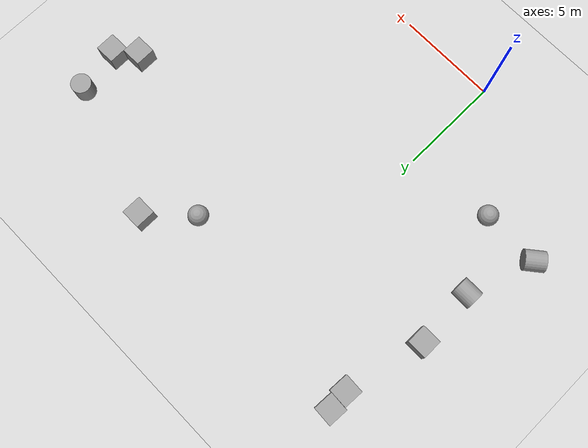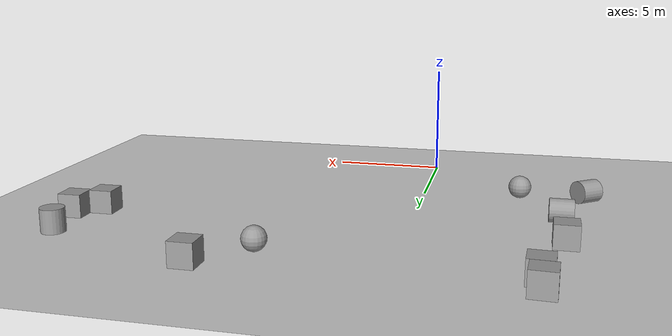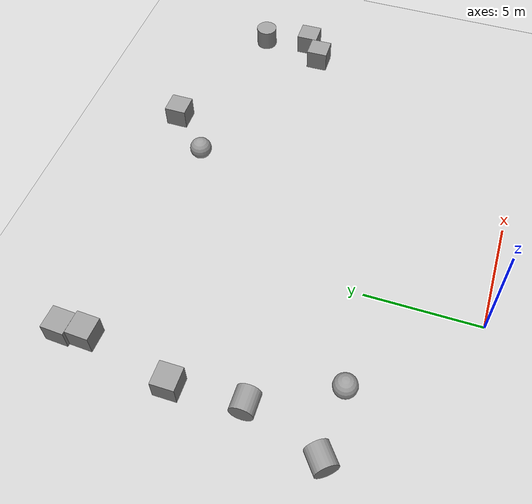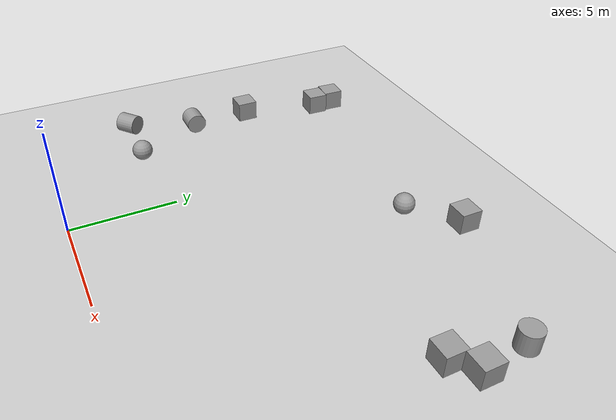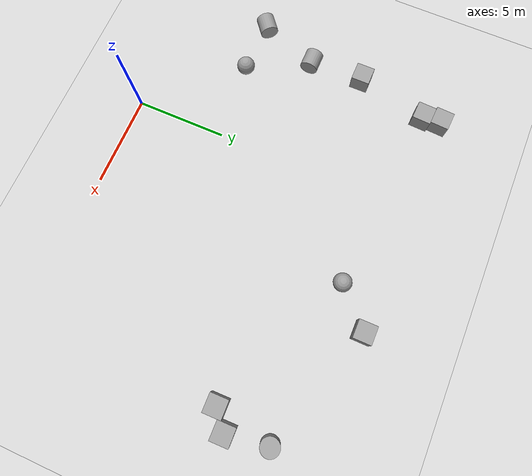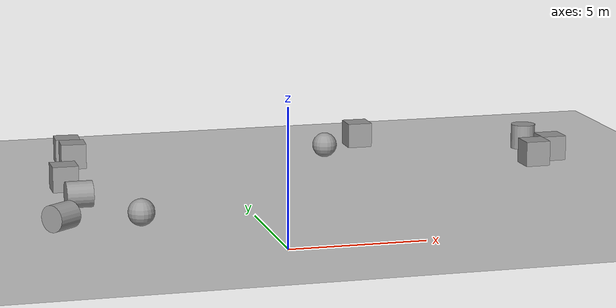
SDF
<sdf version="1.7">
 <world name="default">
  <model name="ground_plane">
   <static>1</static>
   <link name="link">
    <collision name="collision">
     <geometry><plane><normal>0 0 1</normal><size>100 100</size></plane></geometry>
     <surface>
      <contact><collide_bitmask>65535</collide_bitmask></contact>
      <friction><ode><mu>100</mu><mu2>50</mu2></ode></friction>
     </surface>
    </collision>
    <visual name="visual">
     <cast_shadows>0</cast_shadows>
     <geometry><plane><normal>0 0 1</normal><size>100 100</size></plane></geometry>
     <material>
      <script><uri>file://media/materials/scripts/gazebo.material</uri><name>Gazebo/Grey</name></script>
     </material>
    </visual>
   </link>
  </model>
  <model name="unit_sphere">
   <pose>-4.28858 4.61514 0.5 0 -0 0</pose>
   <link name="link">
    <inertial>
     <mass>1</mass>
     <inertia><ixx>0.1</ixx><ixy>0</ixy><ixz>0</ixz><iyy>0.1</iyy><iyz>0</iyz><izz>0.1</izz></inertia>
    </inertial>
    <collision name="collision"><geometry><sphere><radius>0.5</radius></sphere></geometry></collision>
    <visual name="visual">
     <geometry><sphere><radius>0.5</radius></sphere></geometry>
     <material>
      <script><name>Gazebo/Grey</name><uri>file://media/materials/scripts/gazebo.material</uri></script>
     </material>
    </visual>
   </link>
  </model>
  <model name="unit_box">
   <pose>-6.14104 10.9791 0.499995 -1e-05 -0 0</pose>
   <link name="link">
    <inertial>
     <mass>1</mass>
     <inertia>
      <ixx>0.166667</ixx>
      <ixy>0</ixy>
      <ixz>0</ixz>
      <iyy>0.166667</iyy>
      <iyz>0</iyz>
      <izz>0.166667</izz>
     </inertia>
    </inertial>
    <collision name="collision"><geometry><box><size>1 1 1</size></box></geometry></collision>
    <visual name="visual">
     <geometry><box><size>1 1 1</size></box></geometry>
     <material>
      <script><name>Gazebo/Grey</name><uri>file://media/materials/scripts/gazebo.material</uri></script>
     </material>
    </visual>
   </link>
  </model>
  <model name="unit_cylinder">
   <pose>-6.03176 7.959 0.5 -1.5708 -1.57079 1.57079</pose>
   <link name="link">
    <inertial>
     <mass>1</mass>
     <inertia><ixx>0.145833</ixx><ixy>0</ixy><ixz>0</ixz><iyy>0.145833</iyy><iyz>0</iyz><izz>0.125</izz></inertia>
    </inertial>
    <collision name="collision">
     <geometry><cylinder><radius>0.5</radius><length>1</length></cylinder></geometry>
    </collision>
    <visual name="visual">
     <geometry><cylinder><radius>0.5</radius><length>1</length></cylinder></geometry>
     <material>
      <script><name>Gazebo/Grey</name><uri>file://media/materials/scripts/gazebo.material</uri></script>
     </material>
    </visual>
   </link>
  </model>
  <model name="unit_cylinder_0">
   <pose>-7.17754 4.70519 0.5 1.57099 1.57 2.24943</pose>
   <link name="link">
    <inertial>
     <mass>1</mass>
     <inertia><ixx>0.145833</ixx><ixy>0</ixy><ixz>0</ixz><iyy>0.145833</iyy><iyz>0</iyz><izz>0.125</izz></inertia>
    </inertial>
    <collision name="collision">
     <geometry><cylinder><radius>0.5</radius><length>1</length></cylinder></geometry>
    </collision>
    <visual name="visual">
     <geometry><cylinder><radius>0.5</radius><length>1</length></cylinder></geometry>
     <material>
      <script><name>Gazebo/Grey</name><uri>file://media/materials/scripts/gazebo.material</uri></script>
     </material>
    </visual>
   </link>
  </model>
  <model name="unit_box_0">
   <pose>-5.2043 14.9165 0.499995 -0 -1e-05 -0.0479</pose>
   <link name="link">
    <inertial>
     <mass>1</mass>
     <inertia>
      <ixx>0.166667</ixx>
      <ixy>0</ixy>
      <ixz>0</ixz>
      <iyy>0.166667</iyy>
      <iyz>0</iyz>
      <izz>0.166667</izz>
     </inertia>
    </inertial>
    <collision name="collision"><geometry><box><size>1 1 1</size></box></geometry></collision>
    <visual name="visual">
     <geometry><box><size>1 1 1</size></box></geometry>
     <material>
      <script><name>Gazebo/Grey</name><uri>file://media/materials/scripts/gazebo.material</uri></script>
     </material>
    </visual>
   </link>
  </model>
  <model name="unit_box_3">
   <pose>-5.27889 15.9235 0.499995 -1e-05 -0 -0.052551</pose>
   <link name="link">
    <inertial>
     <mass>1</mass>
     <inertia>
      <ixx>0.166667</ixx>
      <ixy>0</ixy>
      <ixz>0</ixz>
      <iyy>0.166667</iyy>
      <iyz>0</iyz>
      <izz>0.166667</izz>
     </inertia>
    </inertial>
    <collision name="collision"><geometry><box><size>1 1 1</size></box></geometry></collision>
    <visual name="visual">
     <geometry><box><size>1 1 1</size></box></geometry>
     <material>
      <script><name>Gazebo/Grey</name><uri>file://media/materials/scripts/gazebo.material</uri></script>
     </material>
    </visual>
   </link>
  </model>
  <model name="unit_sphere_0">
   <pose>5.12333 14.1592 0.5 0 -0 0</pose>
   <link name="link">
    <inertial>
     <mass>1</mass>
     <inertia><ixx>0.1</ixx><ixy>0</ixy><ixz>0</ixz><iyy>0.1</iyy><iyz>0</iyz><izz>0.1</izz></inertia>
    </inertial>
    <collision name="collision"><geometry><sphere><radius>0.5</radius></sphere></geometry></collision>
    <visual name="visual">
     <geometry><sphere><radius>0.5</radius></sphere></geometry>
     <material>
      <script><name>Gazebo/Grey</name><uri>file://media/materials/scripts/gazebo.material</uri></script>
     </material>
    </visual>
   </link>
  </model>
  <model name="unit_box_4">
   <pose>7.03855 16.031 0.5 0 -0 5e-06</pose>
   <link name="link">
    <inertial>
     <mass>1</mass>
     <inertia>
      <ixx>0.166667</ixx>
      <ixy>0</ixy>
      <ixz>0</ixz>
      <iyy>0.166667</iyy>
      <iyz>0</iyz>
      <izz>0.166667</izz>
     </inertia>
    </inertial>
    <collision name="collision"><geometry><box><size>1 1 1</size></box></geometry></collision>
    <visual name="visual">
     <geometry><box><size>1 1 1</size></box></geometry>
     <material>
      <script><name>Gazebo/Grey</name><uri>file://media/materials/scripts/gazebo.material</uri></script>
     </material>
    </visual>
   </link>
  </model>
  <model name="unit_box_5">
   <pose>13.9836 11.5403 0.499995 -1e-05 -0 0.015962</pose>
   <link name="link">
    <inertial>
     <mass>1</mass>
     <inertia>
      <ixx>0.166667</ixx>
      <ixy>0</ixy>
      <ixz>0</ixz>
      <iyy>0.166667</iyy>
      <iyz>0</iyz>
      <izz>0.166667</izz>
     </inertia>
    </inertial>
    <collision name="collision"><geometry><box><size>1 1 1</size></box></geometry></collision>
    <visual name="visual">
     <geometry><box><size>1 1 1</size></box></geometry>
     <material>
      <script><name>Gazebo/Grey</name><uri>file://media/materials/scripts/gazebo.material</uri></script>
     </material>
    </visual>
   </link>
  </model>
  <model name="unit_box_6">
   <pose>12.9964 10.7214 0.499995 -1e-05 -0 0.015976</pose>
   <link name="link">
    <inertial>
     <mass>1</mass>
     <inertia>
      <ixx>0.166667</ixx>
      <ixy>0</ixy>
      <ixz>0</ixz>
      <iyy>0.166667</iyy>
      <iyz>0</iyz>
      <izz>0.166667</izz>
     </inertia>
    </inertial>
    <collision name="collision"><geometry><box><size>1 1 1</size></box></geometry></collision>
    <visual name="visual">
     <geometry><box><size>1 1 1</size></box></geometry>
     <material>
      <script><name>Gazebo/Grey</name><uri>file://media/materials/scripts/gazebo.material</uri></script>
     </material>
    </visual>
   </link>
  </model>
  <model name="unit_cylinder_1">
   <pose>13.6487 13.7961 0.499993 -2e-06 -1e-06 0</pose>
   <link name="link">
    <inertial>
     <mass>1</mass>
     <inertia><ixx>0.145833</ixx><ixy>0</ixy><ixz>0</ixz><iyy>0.145833</iyy><iyz>0</iyz><izz>0.125</izz></inertia>
    </inertial>
    <collision name="collision">
     <geometry><cylinder><radius>0.5</radius><length>1</length></cylinder></geometry>
    </collision>
    <visual name="visual">
     <geometry><cylinder><radius>0.5</radius><length>1</length></cylinder></geometry>
     <material>
      <script><name>Gazebo/Grey</name><uri>file://media/materials/scripts/gazebo.material</uri></script>
     </material>
    </visual>
   </link>
  </model>
  <model name="camera">
   <link name="camera">
    <inertial>
     <mass>1e-05</mass>
     <inertia><ixx>1e-06</ixx><ixy>0</ixy><ixz>0</ixz><iyy>1e-06</iyy><iyz>0</iyz><izz>1e-06</izz></inertia>
    </inertial>
    <collision name="camera_collision"><geometry><box><size>0.001 0.001 0.001</size></box></geometry></collision>
    <visual name="camera_visual"><geometry><box><size>0.001 0.001 0.001</size></box></geometry></visual>
    <sensor name="camera" type="camera">
     <update_rate>15</update_rate>
     <camera name="head">
      <horizontal_fov>2</horizontal_fov>
      <image><width>320</width><height>180</height><format>R8G8B8</format></image>
      <clip><near>0.1</near><far>200</far></clip>
     </camera>
     <plugin name="camera_controller" filename="libgazebo_ros_camera.so">
      <alwaysOn>1</alwaysOn>
      <updateRate>0.0</updateRate>
      <cameraName>camera</cameraName>
      <imageTopicName>image</imageTopicName>
      <cameraInfoTopicName>camera_info</cameraInfoTopicName>
      <frameName>camera</frameName>
      <hackBaseline>0.0</hackBaseline>
      <distortionK1>0.0</distortionK1>
      <distortionK2>0.0</distortionK2>
      <distortionK3>0.0</distortionK3>
      <distortionT1>0.0</distortionT1>
      <distortionT2>0.0</distortionT2>
      <robotNamespace>/</robotNamespace>
     </plugin>
    </sensor>
   </link>
   <pose>0 0 0.74999 0 -0 0</pose>
  </model>
 </world>
</sdf>
